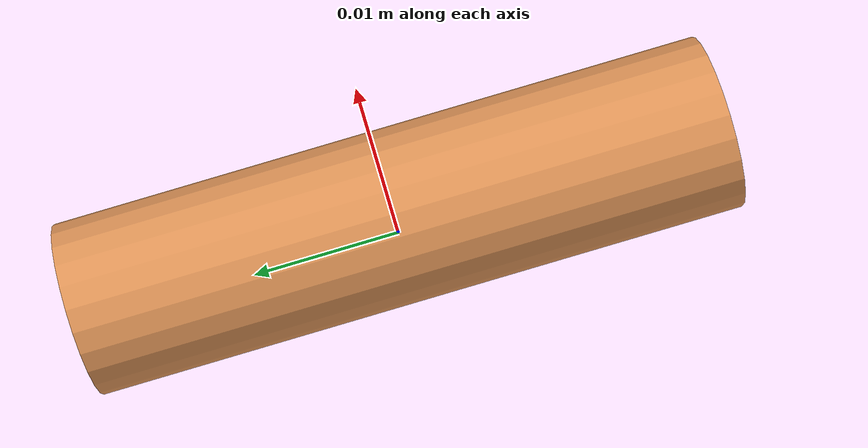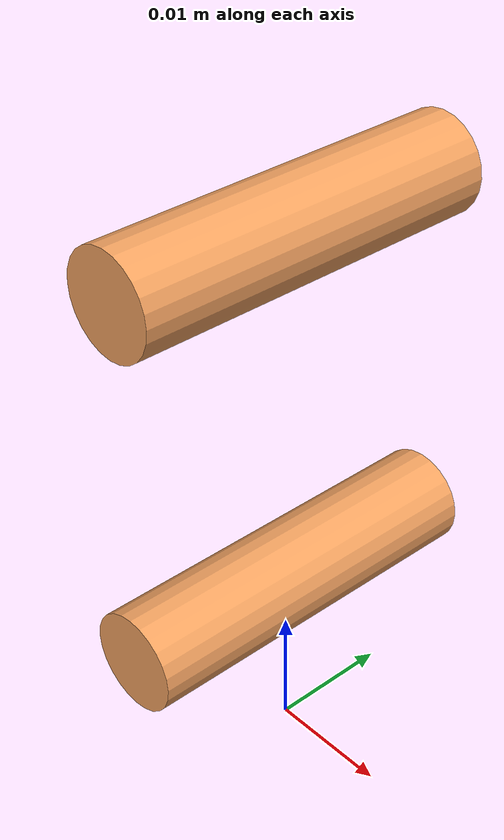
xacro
<?xml version="1.0"?>
<robot xmlns:xacro="http://www.ros.org/wiki/xacro" name="right_hand">
  <link name="right_base_link"/>
  <link name="right_thumb_base_link">
    <visual>
      <geometry>
        <cylinder length="0.03" radius="0.004"/>
      </geometry>
      <origin xyz="0 0 0.015" rpy="1.57079632679 0 0"/>
      <material name="hand_color">
        <color rgba="0.9568627451 0.6392156863 0.3803921569 1"/>
      </material>
    </visual>
  </link>
  <link name="right_thumb_tip_link">
    <visual>
      <geometry>
        <cylinder length="0.03" radius="0.004"/>
      </geometry>
      <origin xyz="0 0 0.015" rpy="1.57079632679 0 0"/>
      <material name="hand_color">
        <color rgba="0.9568627451 0.6392156863 0.3803921569 1"/>
      </material>
    </visual>
  </link>
  <link name="right_middle_base_link">
    <visual>
      <geometry>
        <cylinder length="0.03" radius="0.004"/>
      </geometry>
      <origin xyz="0 0 0.015" rpy="1.57079632679 0 0"/>
      <material name="hand_color">
        <color rgba="0.9568627451 0.6392156863 0.3803921569 1"/>
      </material>
    </visual>
  </link>
  <link name="right_middle_tip_link">
    <visual>
      <geometry>
        <cylinder length="0.03" radius="0.004"/>
      </geometry>
      <origin xyz="0 0 0.015" rpy="1.57079632679 0 0"/>
      <material name="hand_color">
        <color rgba="0.9568627451 0.6392156863 0.3803921569 1"/>
      </material>
    </visual>
  </link>

  <joint name="right_thumb_yaw" type="revolute">
    <parent link="right_base_link"/>
    <child link="right_thumb_base_link"/>
    <origin xyz="0 0 0" rpy="0 0 0"/>
    <axis xyz="0 0 1"/>
    <limit lower="-1.5708" upper="1.5708" effort="1" velocity="1"/>
  </joint>

  <joint name="right_thumb_open" type="revolute">
    <parent link="right_thumb_base_link"/>
    <child link="right_thumb_tip_link"/>
    <origin xyz="0 0 0.03" rpy="0 0 0"/>
    <axis xyz="0 1 0"/>
    <limit lower="-0.8" upper="0.8" effort="1" velocity="1"/>
  </joint>

  <joint name="right_middle_base_open" type="revolute">
    <parent link="right_base_link"/>
    <child link="right_middle_base_link"/>
    <origin xyz="0 0 0" rpy="0 0 0"/>
    <axis xyz="0 1 0"/>
    <limit lower="-0.8" upper="0.8" effort="1" velocity="1"/>
  </joint>

  <joint name="right_middle_tip_open" type="revolute">
    <parent link="right_middle_base_link"/>
    <child link="right_middle_tip_link"/>
    <origin xyz="0 0 0.03" rpy="0 0 0"/>
    <axis xyz="0 1 0"/>
    <limit lower="-0.8" upper="0.8" effort="1" velocity="1"/>
  </joint>
</robot>
